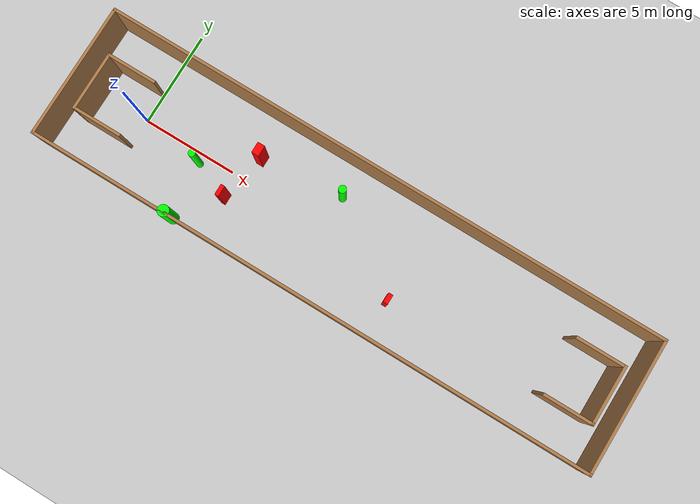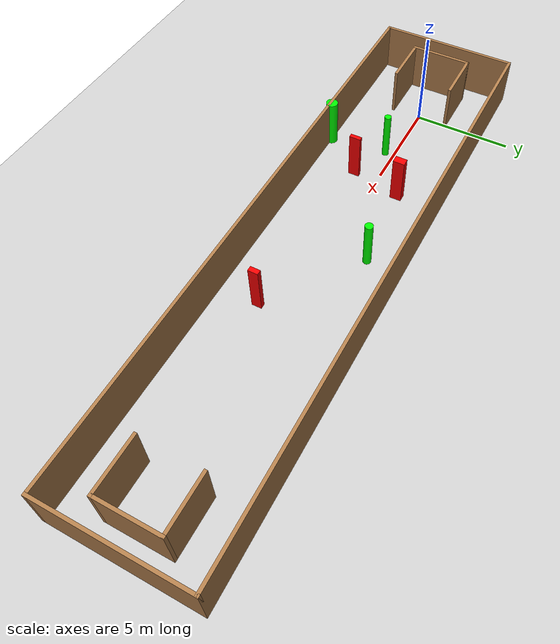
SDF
<sdf version="1.7">
 <world name="default">
  <light name="sun" type="directional">
   <pose>0 0 10 0 -0 0</pose>
   <diffuse>0.8 0.8 0.8 1</diffuse>
   <specular>0.2 0.2 0.2 1</specular>
   <attenuation>
    <range>1000</range>
    <constant>0.9</constant>
    <linear>0.01</linear>
    <quadratic>0.001</quadratic>
   </attenuation>
   <direction>-0.5 0.1 -0.9</direction>
   <spot><inner_angle>0</inner_angle><outer_angle>0</outer_angle><falloff>0</falloff></spot>
  </light>
  <model name="ground_plane">
   <static>1</static>
   <link name="link">
    <collision name="collision">
     <geometry><plane><normal>0 0 1</normal><size>100 100</size></plane></geometry>
     <surface>
      <contact><collide_bitmask>65535</collide_bitmask></contact>
      <friction><ode><mu>100</mu><mu2>50</mu2></ode></friction>
     </surface>
    </collision>
    <visual name="visual">
     <cast_shadows>0</cast_shadows>
     <geometry><plane><normal>0 0 1</normal><size>100 100</size></plane></geometry>
     <material>
      <script><uri>file://media/materials/scripts/gazebo.material</uri><name>Gazebo/Grey</name></script>
     </material>
    </visual>
   </link>
  </model>
  <gravity>0 0 -9.8</gravity>
  <magnetic_field>6e-06 2.3e-05 -4.2e-05</magnetic_field>
  <atmosphere type="adiabatic"/>
  <physics type="ode">
   <max_step_size>0.001</max_step_size>
   <real_time_factor>1</real_time_factor>
   <real_time_update_rate>1000</real_time_update_rate>
  </physics>
  <scene><ambient>0.4 0.4 0.4 1</ambient><background>0.7 0.7 0.7 1</background><shadows>1</shadows></scene>
  <spherical_coordinates>
   <surface_model>EARTH_WGS84</surface_model>
   <latitude_deg>0</latitude_deg>
   <longitude_deg>0</longitude_deg>
   <elevation>0</elevation>
   <heading_deg>0</heading_deg>
  </spherical_coordinates>
  <model name="my_base_walls">
   <link name="Wall_0">
    <collision name="Wall_0_Collision">
     <geometry><box><size>7.15 0.15 2.5</size></box></geometry>
     <pose>0 0 1.25 0 -0 0</pose>
    </collision>
    <visual name="Wall_0_Visual">
     <pose>0 0 1.25 0 -0 0</pose>
     <geometry><box><size>7.15 0.15 2.5</size></box></geometry>
     <material>
      <script><uri>file://media/materials/scripts/gazebo.material</uri><name>Gazebo/Wood</name></script>
      <ambient>1 1 1 1</ambient>
     </material>
     <meta><layer>0</layer></meta>
    </visual>
    <pose>-15 0 0 0 -0 1.5708</pose>
   </link>
   <link name="Wall_10">
    <collision name="Wall_10_Collision">
     <geometry><box><size>2.65 0.15 2.5</size></box></geometry>
     <pose>0 0 1.25 0 -0 0</pose>
    </collision>
    <visual name="Wall_10_Visual">
     <pose>0 0 1.25 0 -0 0</pose>
     <geometry><box><size>2.65 0.15 2.5</size></box></geometry>
     <material>
      <script><uri>file://media/materials/scripts/gazebo.material</uri><name>Gazebo/Wood</name></script>
      <ambient>1 1 1 1</ambient>
     </material>
     <meta><layer>0</layer></meta>
    </visual>
    <pose>-12.75 -1.5 0 0 -0 0</pose>
   </link>
   <link name="Wall_12">
    <collision name="Wall_12_Collision">
     <geometry><box><size>2.65 0.15 2.5</size></box></geometry>
     <pose>0 0 1.25 0 -0 0</pose>
    </collision>
    <visual name="Wall_12_Visual">
     <pose>0 0 1.25 0 -0 0</pose>
     <geometry><box><size>2.65 0.15 2.5</size></box></geometry>
     <material>
      <script><uri>file://media/materials/scripts/gazebo.material</uri><name>Gazebo/Wood</name></script>
      <ambient>1 1 1 1</ambient>
     </material>
     <meta><layer>0</layer></meta>
    </visual>
    <pose>-12.75 1.5 0 0 -0 0</pose>
   </link>
   <link name="Wall_14">
    <collision name="Wall_14_Collision">
     <geometry><box><size>3.15 0.15 2.5</size></box></geometry>
     <pose>0 0 1.25 0 -0 0</pose>
    </collision>
    <visual name="Wall_14_Visual">
     <pose>0 0 1.25 0 -0 0</pose>
     <geometry><box><size>3.15 0.15 2.5</size></box></geometry>
     <material>
      <script><uri>file://media/materials/scripts/gazebo.material</uri><name>Gazebo/Wood</name></script>
      <ambient>1 1 1 1</ambient>
     </material>
     <meta><layer>0</layer></meta>
    </visual>
    <pose>14 0 0 0 -0 -1.5708</pose>
   </link>
   <link name="Wall_15">
    <collision name="Wall_15_Collision">
     <geometry><box><size>2.65 0.15 2.5</size></box></geometry>
     <pose>0 0 1.25 0 -0 0</pose>
    </collision>
    <visual name="Wall_15_Visual">
     <pose>0 0 1.25 0 -0 0</pose>
     <geometry><box><size>2.65 0.15 2.5</size></box></geometry>
     <material>
      <script><uri>file://media/materials/scripts/gazebo.material</uri><name>Gazebo/Wood</name></script>
      <ambient>1 1 1 1</ambient>
     </material>
     <meta><layer>0</layer></meta>
    </visual>
    <pose>12.75 -1.5 0 0 -0 3.14159</pose>
   </link>
   <link name="Wall_17">
    <collision name="Wall_17_Collision">
     <geometry><box><size>2.65 0.15 2.5</size></box></geometry>
     <pose>0 0 1.25 0 -0 0</pose>
    </collision>
    <visual name="Wall_17_Visual">
     <pose>0 0 1.25 0 -0 0</pose>
     <geometry><box><size>2.65 0.15 2.5</size></box></geometry>
     <material>
      <script><uri>file://media/materials/scripts/gazebo.material</uri><name>Gazebo/Wood</name></script>
      <ambient>1 1 1 1</ambient>
     </material>
     <meta><layer>0</layer></meta>
    </visual>
    <pose>12.75 1.5 0 0 -0 3.14159</pose>
   </link>
   <link name="Wall_2">
    <collision name="Wall_2_Collision">
     <geometry><box><size>30.15 0.15 2.5</size></box></geometry>
     <pose>0 0 1.25 0 -0 0</pose>
    </collision>
    <visual name="Wall_2_Visual">
     <pose>0 0 1.25 0 -0 0</pose>
     <geometry><box><size>30.15 0.15 2.5</size></box></geometry>
     <material>
      <script><uri>file://media/materials/scripts/gazebo.material</uri><name>Gazebo/Wood</name></script>
      <ambient>1 1 1 1</ambient>
     </material>
     <meta><layer>0</layer></meta>
    </visual>
    <pose>-0 -3.5 0 0 -0 0</pose>
   </link>
   <link name="Wall_4">
    <collision name="Wall_4_Collision">
     <geometry><box><size>30.15 0.15 2.5</size></box></geometry>
     <pose>0 0 1.25 0 -0 0</pose>
    </collision>
    <visual name="Wall_4_Visual">
     <pose>0 0 1.25 0 -0 0</pose>
     <geometry><box><size>30.15 0.15 2.5</size></box></geometry>
     <material>
      <script><uri>file://media/materials/scripts/gazebo.material</uri><name>Gazebo/Wood</name></script>
      <ambient>1 1 1 1</ambient>
     </material>
     <meta><layer>0</layer></meta>
    </visual>
    <pose>-0 3.5 0 0 -0 0</pose>
   </link>
   <link name="Wall_6">
    <collision name="Wall_6_Collision">
     <geometry><box><size>7.15 0.15 2.5</size></box></geometry>
     <pose>0 0 1.25 0 -0 0</pose>
    </collision>
    <visual name="Wall_6_Visual">
     <pose>0 0 1.25 0 -0 0</pose>
     <geometry><box><size>7.15 0.15 2.5</size></box></geometry>
     <material>
      <script><uri>file://media/materials/scripts/gazebo.material</uri><name>Gazebo/Wood</name></script>
      <ambient>1 1 1 1</ambient>
     </material>
     <meta><layer>0</layer></meta>
    </visual>
    <pose>15 0 0 0 -0 -1.5708</pose>
   </link>
   <link name="Wall_9">
    <collision name="Wall_9_Collision">
     <geometry><box><size>3.15 0.15 2.5</size></box></geometry>
     <pose>0 0 1.25 0 -0 0</pose>
    </collision>
    <visual name="Wall_9_Visual">
     <pose>0 0 1.25 0 -0 0</pose>
     <geometry><box><size>3.15 0.15 2.5</size></box></geometry>
     <material>
      <script><uri>file://media/materials/scripts/gazebo.material</uri><name>Gazebo/Wood</name></script>
      <ambient>1 1 1 1</ambient>
     </material>
     <meta><layer>0</layer></meta>
    </visual>
    <pose>-14 0 0 0 -0 -1.5708</pose>
   </link>
   <static>1</static>
   <pose>11.5 0 0 0 -0 0</pose>
  </model>
  <model name="cylinder1">
   <static>1</static>
   <link name="link">
    <inertial>
     <mass>1</mass>
     <inertia><ixx>0.5</ixx><ixy>0</ixy><ixz>0</ixz><iyy>0.5</iyy><iyz>0</iyz><izz>1</izz></inertia>
    </inertial>
    <collision name="collision">
     <geometry><cylinder><radius>0.20070905909136452</radius><length>2.5</length></cylinder></geometry>
    </collision>
    <visual name="visual">
     <geometry><cylinder><radius>0.20070905909136452</radius><length>2.5</length></cylinder></geometry>
     <material>
      <ambient>0 1 0 1</ambient>
      <diffuse>0 1 0 1</diffuse>
      <specular>0.1 0.1 0.1 1</specular>
      <emissive>0 0 0 0</emissive>
     </material>
    </visual>
   </link>
   <pose>10.293612009953867 1.7622896435007709 1.25 0 0 0</pose>
  </model>
  <model name="cylinder2">
   <static>1</static>
   <link name="link">
    <inertial>
     <mass>1</mass>
     <inertia><ixx>0.5</ixx><ixy>0</ixy><ixz>0</ixz><iyy>0.5</iyy><iyz>0</iyz><izz>1</izz></inertia>
    </inertial>
    <collision name="collision">
     <geometry><cylinder><radius>0.17402117816728094</radius><length>2.5</length></cylinder></geometry>
    </collision>
    <visual name="visual">
     <geometry><cylinder><radius>0.17402117816728094</radius><length>2.5</length></cylinder></geometry>
     <material>
      <ambient>0 1 0 1</ambient>
      <diffuse>0 1 0 1</diffuse>
      <specular>0.1 0.1 0.1 1</specular>
      <emissive>0 0 0 0</emissive>
     </material>
    </visual>
   </link>
   <pose>3.392467923677012 -0.46310145318031815 1.25 0 0 0</pose>
  </model>
  <model name="cylinder3">
   <static>1</static>
   <link name="link">
    <inertial>
     <mass>1</mass>
     <inertia><ixx>0.5</ixx><ixy>0</ixy><ixz>0</ixz><iyy>0.5</iyy><iyz>0</iyz><izz>1</izz></inertia>
    </inertial>
    <collision name="collision">
     <geometry><cylinder><radius>0.2977936382124293</radius><length>2.5</length></cylinder></geometry>
    </collision>
    <visual name="visual">
     <geometry><cylinder><radius>0.2977936382124293</radius><length>2.5</length></cylinder></geometry>
     <material>
      <ambient>0 1 0 1</ambient>
      <diffuse>0 1 0 1</diffuse>
      <specular>0.1 0.1 0.1 1</specular>
      <emissive>0 0 0 0</emissive>
     </material>
    </visual>
   </link>
   <pose>3.7307845824528076 -3.4303483413680125 1.25 0 0 0</pose>
  </model>
  <model name="box1">
   <static>1</static>
   <link name="link">
    <inertial>
     <mass>1</mass>
     <inertia><ixx>0.083</ixx><ixy>0</ixy><ixz>0</ixz><iyy>0.083</iyy><iyz>0</iyz><izz>0.083</izz></inertia>
    </inertial>
    <collision name="collision">
     <geometry><box><size>0.3791528871129245 0.5767539097492842 2.5</size></box></geometry>
    </collision>
    <visual name="visual">
     <geometry><box><size>0.3791528871129245 0.5767539097492842 2.5</size></box></geometry>
     <material>
      <ambient>1 0 0 1</ambient>
      <diffuse>1 0 0 1</diffuse>
      <specular>0.1 0.1 0.1 1</specular>
      <emissive>0 0 0 0</emissive>
     </material>
    </visual>
    <sensor name="my_contact" type="contact">
     <contact><collision>box_collision</collision><topic>__default_topic__</topic></contact>
    </sensor>
   </link>
   <pose>5.939962265525919 1.3216087847137725 1.25 0 0 0</pose>
  </model>
  <model name="box2">
   <static>1</static>
   <link name="link">
    <inertial>
     <mass>1</mass>
     <inertia><ixx>0.083</ixx><ixy>0</ixy><ixz>0</ixz><iyy>0.083</iyy><iyz>0</iyz><izz>0.083</izz></inertia>
    </inertial>
    <collision name="collision">
     <geometry><box><size>0.20447224467834157 0.5691871648385994 2.5</size></box></geometry>
    </collision>
    <visual name="visual">
     <geometry><box><size>0.20447224467834157 0.5691871648385994 2.5</size></box></geometry>
     <material>
      <ambient>1 0 0 1</ambient>
      <diffuse>1 0 0 1</diffuse>
      <specular>0.1 0.1 0.1 1</specular>
      <emissive>0 0 0 0</emissive>
     </material>
    </visual>
    <sensor name="my_contact" type="contact">
     <contact><collision>box_collision</collision><topic>__default_topic__</topic></contact>
    </sensor>
   </link>
   <pose>5.449721382986267 -1.2601288872428924 1.25 0 0 0</pose>
  </model>
  <model name="box3">
   <static>1</static>
   <link name="link">
    <inertial>
     <mass>1</mass>
     <inertia><ixx>0.083</ixx><ixy>0</ixy><ixz>0</ixz><iyy>0.083</iyy><iyz>0</iyz><izz>0.083</izz></inertia>
    </inertial>
    <collision name="collision">
     <geometry><box><size>0.24889284066281703 0.4933664192443459 2.5</size></box></geometry>
    </collision>
    <visual name="visual">
     <geometry><box><size>0.24889284066281703 0.4933664192443459 2.5</size></box></geometry>
     <material>
      <ambient>1 0 0 1</ambient>
      <diffuse>1 0 0 1</diffuse>
      <specular>0.1 0.1 0.1 1</specular>
      <emissive>0 0 0 0</emissive>
     </material>
    </visual>
    <sensor name="my_contact" type="contact">
     <contact><collision>box_collision</collision><topic>__default_topic__</topic></contact>
    </sensor>
   </link>
   <pose>14.725943237000338 -1.4714106344319804 1.25 0 0 0</pose>
  </model>
 </world>
</sdf>
